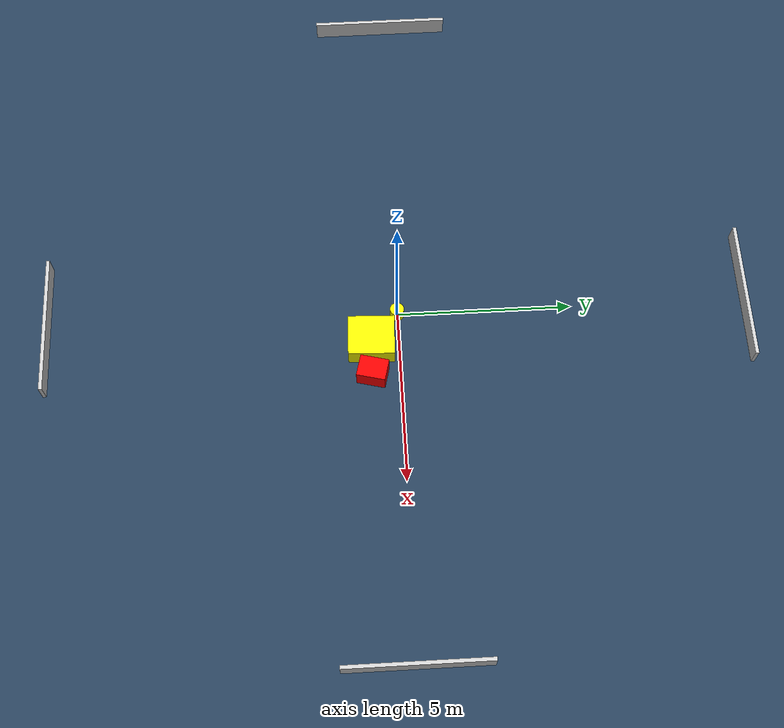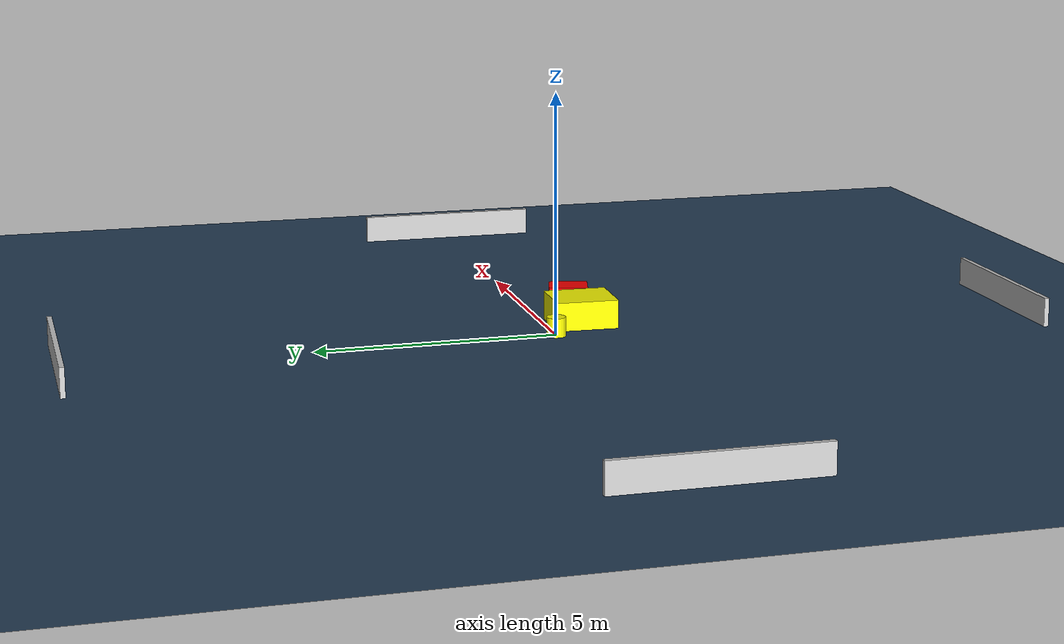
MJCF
<?xml version="1.0" ?>
<mujoco model="generated_environment">
  <option timestep="0.01" integrator="RK4" cone="elliptic"/>
  <default>
    <geom density="1"/>
  </default>
  <asset>
    <texture builtin="gradient" height="3072" name="skybox" rgb1="0.3 0.5 0.7" rgb2="0 0 0" type="skybox" width="512"/>
    <texture builtin="checker" height="300" name="groundplane" rgb1="0.2 0.3 0.4" rgb2="0.1 0.2 0.3" type="2d" width="300"/>
    <material name="groundplane" reflectance="0.2" texrepeat="5 5" texture="groundplane"/>
  </asset>
  <worldbody>
    <light dir="0 0 -1" directional="true" pos="0 0 1.5"/>
    <geom condim="3" friction="0.5 0.005 0.001" material="groundplane" name="floor" pos="0 0 0" size="0 0 0.05" type="plane"/>
    <body name="walls">
      <geom name="wall_1" condim="4" pos="-10.0 0.0 0.3" rgba="0.800000011920929 0.800000011920929 0.800000011920929 1.0" size="0.05 2.0 0.3" type="box"/>
      <geom name="wall_2" condim="4" pos="10.0 0.0 0.3" rgba="0.800000011920929 0.800000011920929 0.800000011920929 1.0" size="0.05 2.0 0.3" type="box"/>
      <geom name="wall_3" condim="4" pos="0.0 -10.0 0.3" rgba="0.800000011920929 0.800000011920929 0.800000011920929 1.0" size="2.0 0.05 0.3" type="box"/>
      <geom name="wall_4" condim="4" pos="0.0 10.0 0.3" rgba="0.800000011920929 0.800000011920929 0.800000011920929 1.0" size="2.0 0.05 0.3" type="box"/>
    </body>
    <body name="robot">
      <joint name="joint_x" type="slide" pos="0 0 0" axis="1 0 0"/>
      <joint name="joint_y" type="slide" pos="0 0 0" axis="0 1 0"/>
      <geom name="robot" type="cylinder" pos="0.0 0.0 0.2" size="0.2 0.2 0.0" mass="5.0" friction="1.0 0.005 0.0001" condim="4" rgba="1.0 1.0 0.0 1.0"/>
    </body>
    <body name="obstacle_1_movable">
      <geom name="obstacle_1_movable" condim="4" pos="0.844428612314325 -0.7699876883950489 0.3" euler="0 0 357.91285565799706" friction="0.0 0.005 0.001" rgba="1.0 1.0 0.0 1.0" size="0.5815827685067093 0.656348513089549 0.3" type="box" mass="0.1"/>
      <joint type="free"/>
    </body>
    <body name="obstacle_2_static">
      <geom name="obstacle_2_static" condim="4" pos="1.8422472604018014 -0.7766453232769649 0.3" euler="0 0 345.8335683046562" friction="0.0 0.005 0.001" rgba="1.0 0.0 0.0 1.0" size="0.3085435395028188 0.4092768231609684 0.3" type="box"/>
    </body>
  </worldbody>
  <actuator>
    <motor name="actuator_x" joint="joint_x" gear="1" ctrlrange="-1 1"/>
    <motor name="actuator_y" joint="joint_y" gear="1" ctrlrange="-1 1"/>
  </actuator>
</mujoco>
